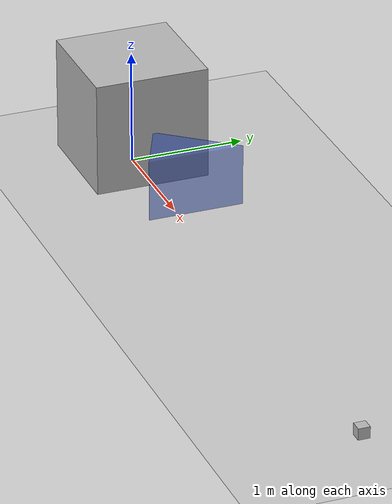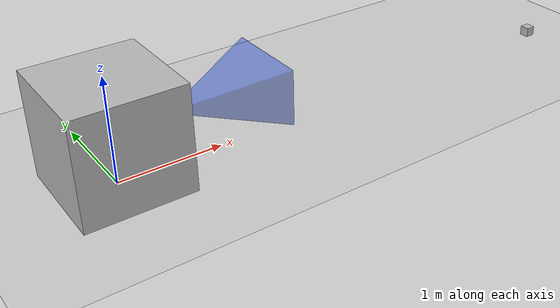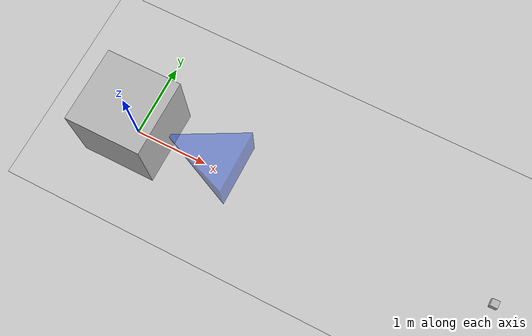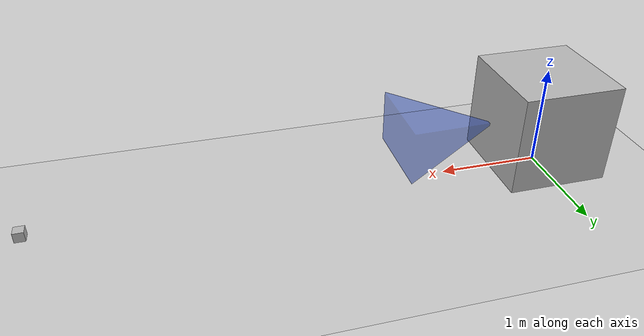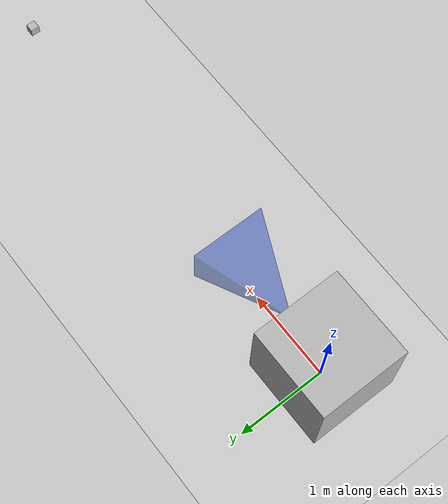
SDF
<?xml version="1.0"?>
<sdf version="1.4">
  <world name="default">

    <!-- Ground Plane -->
    <include>
      <uri>model://ground_plane</uri>
    </include>

    <include>
      <uri>model://sun</uri>
    </include>

    <model name="camera_body">
        <link name="link">
            <pose>0 0 0.5 0 0 0</pose>
            <inertial>
                <pose>0 0 0 0 0 0</pose>
                <inertia>
                    <ixx>0.01</ixx>
                    <ixy>0</ixy>
                    <ixz>0</ixz>
                    <iyy>0.01</iyy>
                    <iyz>0</iyz>
                    <izz>0.01</izz>
                </inertia>
                <mass>5.0</mass>
            </inertial>
            <collision name="collision">
                <geometry>
                    <box>
                        <size>1 1 1</size>
                    </box>
                </geometry>
            </collision>
            <visual name="visual">
                <geometry>
                    <box>
                        <size>1 1 1</size>
                    </box>
                </geometry>
            </visual>
        </link>

        <joint name="camera_frame_joint" type="fixed">
      		<parent>link</parent>
      		<child>camera</child>
        </joint>

        <link name="camera">
          <pose>0.51 0.0 0.5 0 0 0</pose>
          <inertial>
               <mass>0.01</mass>
               <inertia>
               <ixx>0.01</ixx>
               <ixy>0</ixy>
               <ixz>0</ixz>
               <iyy>0.01</iyy>
               <iyz>0</iyz>
               <izz>0.01</izz>
           </inertia>
         </inertial>

         <collision name="collision">
           <geometry>
               <box>
                   <size>0.01 0.01 0.01</size>
               </box>
           </geometry>
         </collision>
         <visual name="visual">
           <geometry>
             <mesh> <uri>/home/eloy/Development/catkin_ws/src/mbzirc2020/mbzirc_gazebo_simulation/mbzirc_gazebo_plugins/mesh/obj_detect_fov.dae</uri></mesh>
           </geometry>
           <material>
             <script>
               <uri>gazebo.material</uri>
               <name>Gazebo/BlueTransparent</name>
             </script>
           </material>
         </visual>
         <sensor name="laser" type="ray">
          <pose>0.00 0 0.0 0 0 0</pose>
          <ray>
            <scan>
              <horizontal>
                <samples>100</samples>
                <resolution>1</resolution>
                <min_angle>-0.3927</min_angle>
                <max_angle>0.3927</max_angle>
              </horizontal>
              <vertical>
                <samples>100</samples>
                <resolution>1</resolution>
                <min_angle>-0.2618</min_angle>
                <max_angle>0.2618</max_angle>
              </vertical>
            </scan>
            <range>
              <min>0.08</min>
              <max>10</max>
              <resolution>0.01</resolution>
            </range>
          </ray>
          <plugin name="ros_object_detection" filename="libfake_object_detection_plugin.so">
             <topic_name>sensed_objects</topic_name>
             <robot_name>my_robot</robot_name>
          </plugin>
          <always_on>1</always_on>
          <update_rate>30</update_rate>
          <visualize>false</visualize>
        </sensor>
        </link>
    </model>

    <model name='obj_box'>
      <pose>5 0 0.05 0 0 0</pose>
      <link name='1.box'>
        <inertial>
          <mass>0.5</mass>
          <inertia>
            <ixx>0.01</ixx>
            <ixy>0</ixy>
            <ixz>0</ixz>
            <iyy>0.01</iyy>
            <iyz>0</iyz>
            <izz>0.01</izz>
          </inertia>
        </inertial>
        <collision name='collision'>
          <geometry>
            <box>
              <size>0.1 0.1 0.1</size>
            </box>
          </geometry>
        </collision>
        <visual name='visual'>
          <geometry>
            <box>
              <size>0.1 0.1 0.1</size>
            </box>
          </geometry>
        </visual>
      </link>
    </model>
  </world>
</sdf>
